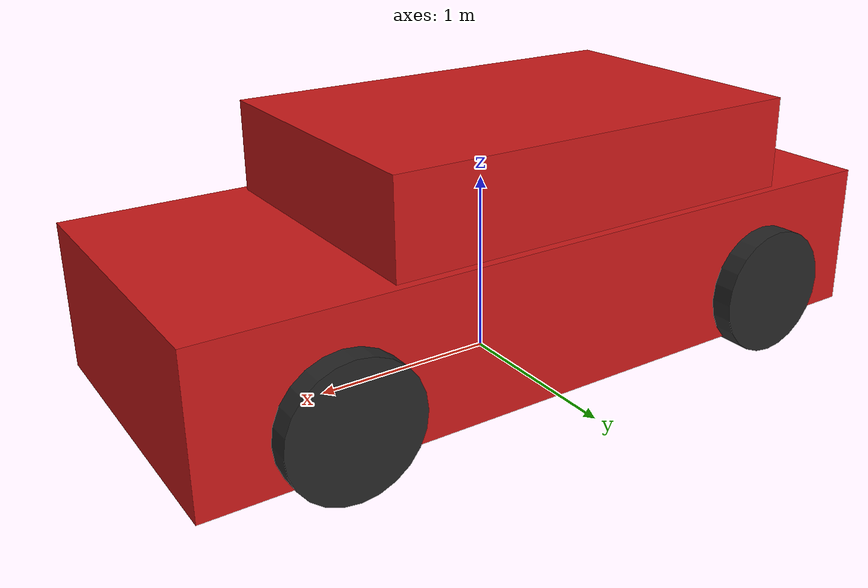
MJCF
<mujoco>
  <!-- Simple sedan car model -->
  <asset>
    <material name="car_body" rgba="0.8 0.1 0.1 1"/>
    <material name="car_window" rgba="0.2 0.3 0.4 0.7"/>
    <material name="car_wheel" rgba="0.15 0.15 0.15 1"/>
  </asset>

  <worldbody>
    <body name="car_root">
      <!-- Main body -->
      <geom name="car_body_lower" type="box" size="2.0 0.85 0.4" pos="0 0 0.5" material="car_body"/>
      <geom name="car_body_upper" type="box" size="1.2 0.8 0.35" pos="-0.2 0 1.05" material="car_body"/>

      <!-- Windows -->
      <geom name="windshield" type="box" size="0.02 0.7 0.3" pos="0.8 0 1.0" euler="0 25 0" material="car_window"/>
      <geom name="rear_window" type="box" size="0.02 0.7 0.28" pos="-1.1 0 1.0" euler="0 -30 0" material="car_window"/>

      <!-- Wheels -->
      <geom name="wheel_fl" type="cylinder" size="0.35 0.12" pos="1.3 0.85 0.35" euler="90 0 0" material="car_wheel"/>
      <geom name="wheel_fr" type="cylinder" size="0.35 0.12" pos="1.3 -0.85 0.35" euler="90 0 0" material="car_wheel"/>
      <geom name="wheel_rl" type="cylinder" size="0.35 0.12" pos="-1.3 0.85 0.35" euler="90 0 0" material="car_wheel"/>
      <geom name="wheel_rr" type="cylinder" size="0.35 0.12" pos="-1.3 -0.85 0.35" euler="90 0 0" material="car_wheel"/>
    </body>
  </worldbody>
</mujoco>
